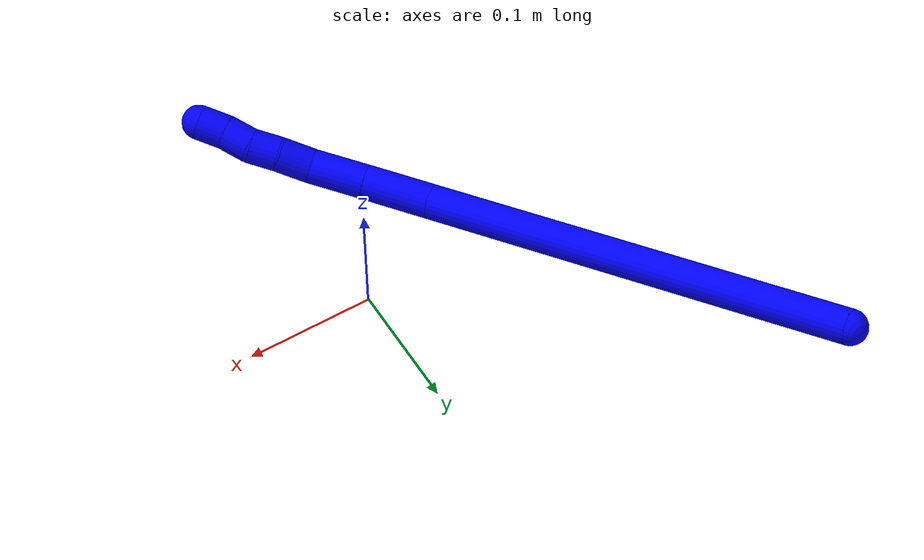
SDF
<sdf version="1.7">
 <world name="default">
  <plugin name="TubeGeneratorPlugin" filename="libtube_generator_plugin.so"/>
  <model name="photoneo_s_sensor">
   <static>1</static>
   <pose>0 0 2 1.57079 1.57079 3.14159</pose>
   <link name="link">
    <inertial><mass>0.1</mass></inertial>
    <sensor name="sensor" type="depth">
     <update_rate>30</update_rate>
     <camera>
      <horizontal_fov>1.22</horizontal_fov>
      <image><width>1920</width><height>1200</height><format>B8G8R8</format></image>
      <clip><near>0.1</near><far>4</far></clip>
      <depth_camera><output>points</output></depth_camera>
     </camera>
     <plugin name="camera_plugin" filename="libgazebo_ros_depth_camera.so">
      <baseline>0.2</baseline>
      <alwaysOn>1</alwaysOn>
      <updateRate>0.0</updateRate>
      <cameraName>camera_ir</cameraName>
      <imageTopicName>/camera/color/image_raw</imageTopicName>
      <cameraInfoTopicName>/camera/color/camera_info</cameraInfoTopicName>
      <depthImageTopicName>/camera/depth/image_raw</depthImageTopicName>
      <depthImageCameraInfoTopicName>/camera/depth/camera_info</depthImageCameraInfoTopicName>
      <pointCloudTopicName>/camera/depth/points</pointCloudTopicName>
      <frameName>fr_optical</frameName>
      <pointCloudCutoff>0.1</pointCloudCutoff>
      <pointCloudCutoffMax>2.0</pointCloudCutoffMax>
      <distortionK1>0</distortionK1>
      <distortionK2>0</distortionK2>
      <distortionK3>0</distortionK3>
      <distortionT1>0</distortionT1>
      <distortionT2>0</distortionT2>
      <CxPrime>0</CxPrime>
      <Cx>0</Cx>
      <Cy>0</Cy>
      <focalLength>0</focalLength>
      <hackBaseline>0</hackBaseline>
     </plugin>
    </sensor>
   </link>
  </model>
  <gravity>0 0 -9.8</gravity>
  <magnetic_field>6e-06 2.3e-05 -4.2e-05</magnetic_field>
  <atmosphere type="adiabatic"/>
  <physics name="default_physics" default="0" type="ode">
   <max_step_size>0.003</max_step_size>
   <real_time_factor>1</real_time_factor>
   <real_time_update_rate>1000</real_time_update_rate>
   <max_contacts>10000</max_contacts>
   <ode>
    <solver>
     <type>quick</type>
     <iters>100</iters>
     <sor>1.3</sor>
     <use_dynamic_moi_rescaling>0</use_dynamic_moi_rescaling>
    </solver>
    <constraints>
     <contact_max_correcting_vel>0</contact_max_correcting_vel>
     <contact_surface_layer>0.001</contact_surface_layer>
     <cfm>0</cfm>
     <erp>0.2</erp>
    </constraints>
   </ode>
  </physics>
  <scene><ambient>0.4 0.4 0.4 1</ambient><background>0.7 0.7 0.7 1</background><shadows>0</shadows></scene>
  <audio><device>default</device></audio>
  <spherical_coordinates>
   <surface_model>EARTH_WGS84</surface_model>
   <latitude_deg>0</latitude_deg>
   <longitude_deg>0</longitude_deg>
   <elevation>0</elevation>
   <heading_deg>0</heading_deg>
  </spherical_coordinates>
  <model name="bin">
   <static>1</static>
   <link name="bottom">
    <collision name="collision-bottom">
     <pose>0 0 -0.01 0 -0 0</pose>
     <geometry><box><size>0.8 0.6 0.02</size></box></geometry>
     <surface>
      <friction><ode><mu>100</mu><mu2>100</mu2></ode></friction>
      <contact><collide_bitmask>65535</collide_bitmask></contact>
     </surface>
    </collision>
   </link>
   <link name="west_wall">
    <collision name="collision-west_wall">
     <pose>-0.41 0 0.1 0 -0 0</pose>
     <geometry><box><size>0.02 0.6 0.2</size></box></geometry>
     <surface>
      <friction><ode><mu>100</mu><mu2>100</mu2></ode></friction>
      <contact><collide_bitmask>65535</collide_bitmask></contact>
     </surface>
    </collision>
   </link>
   <link name="east_wall">
    <collision name="collision-east_wall">
     <pose>0.41 0 0.1 0 -0 0</pose>
     <geometry><box><size>0.02 0.6 0.2</size></box></geometry>
     <surface>
      <friction><ode><mu>100</mu><mu2>100</mu2></ode></friction>
      <contact><collide_bitmask>65535</collide_bitmask></contact>
     </surface>
    </collision>
   </link>
   <link name="south_wall">
    <collision name="collision-south_wall">
     <pose>0 -0.31 0.1 0 -0 0</pose>
     <geometry><box><size>0.8 0.02 0.2</size></box></geometry>
     <surface>
      <friction><ode><mu>100</mu><mu2>100</mu2></ode></friction>
      <contact><collide_bitmask>65535</collide_bitmask></contact>
     </surface>
    </collision>
   </link>
   <link name="north_wall">
    <collision name="collision-north_wall">
     <pose>0 0.31 0.1 0 -0 0</pose>
     <geometry><box><size>0.8 0.02 0.2</size></box></geometry>
     <surface>
      <friction><ode><mu>100</mu><mu2>100</mu2></ode></friction>
      <contact><collide_bitmask>65535</collide_bitmask></contact>
     </surface>
    </collision>
   </link>
  </model>
  <model name="1">
   <static>0</static>
   <link name="1">
    <collision name="collision-cylinder-e_1_1_4">
     <pose>0.047811 -0.045911 -0.147704 2.84023 0.299792 1.56549</pose>
     <geometry><cylinder><radius>0.0125</radius><length>0.323792</length></cylinder></geometry>
     <surface>
      <friction><ode><mu>1.16</mu><mu2>1.16</mu2><slip1>0</slip1><slip2>0</slip2></ode></friction>
      <contact><ode><kp>1e+06</kp><kd>1</kd><max_vel>0</max_vel><min_depth>0.001</min_depth></ode></contact>
     </surface>
    </collision>
    <visual name="visual-cylinder-e_1_1_4">
     <pose>0.047811 -0.045911 -0.147704 2.84023 0.299792 1.56549</pose>
     <geometry><cylinder><radius>0.0125</radius><length>0.323792</length></cylinder></geometry>
     <material><ambient>0 0 1 1</ambient></material>
    </visual>
    <collision name="collision-cylinder-e_2_4_5">
     <pose>0.102949 -0.104695 -0.315409 2.56971 0.298799 0.94637</pose>
     <geometry><cylinder><radius>0.0125</radius><length>0.049776</length></cylinder></geometry>
     <surface>
      <friction><ode><mu>1.16</mu><mu2>1.16</mu2><slip1>0</slip1><slip2>0</slip2></ode></friction>
      <contact><ode><kp>1e+06</kp><kd>1</kd><max_vel>0</max_vel><min_depth>0.001</min_depth></ode></contact>
     </surface>
    </collision>
    <visual name="visual-cylinder-e_2_4_5">
     <pose>0.102949 -0.104695 -0.315409 2.56971 0.298799 0.94637</pose>
     <geometry><cylinder><radius>0.0125</radius><length>0.049776</length></cylinder></geometry>
     <material><ambient>0 0 1 1</ambient></material>
    </visual>
    <collision name="collision-cylinder-e_3_5_6">
     <pose>0.116395 -0.128923 -0.351371 2.52326 0.302841 0.891329</pose>
     <geometry><cylinder><radius>0.0125</radius><length>0.041043</length></cylinder></geometry>
     <surface>
      <friction><ode><mu>1.16</mu><mu2>1.16</mu2><slip1>0</slip1><slip2>0</slip2></ode></friction>
      <contact><ode><kp>1e+06</kp><kd>1</kd><max_vel>0</max_vel><min_depth>0.001</min_depth></ode></contact>
     </surface>
    </collision>
    <visual name="visual-cylinder-e_3_5_6">
     <pose>0.116395 -0.128923 -0.351371 2.52326 0.302841 0.891329</pose>
     <geometry><cylinder><radius>0.0125</radius><length>0.041043</length></cylinder></geometry>
     <material><ambient>0 0 1 1</ambient></material>
    </visual>
    <collision name="collision-cylinder-e_4_6_7">
     <pose>0.125165 -0.149853 -0.374858 2.23691 0.214228 0.435524</pose>
     <geometry><cylinder><radius>0.0125</radius><length>0.024929</length></cylinder></geometry>
     <surface>
      <friction><ode><mu>1.16</mu><mu2>1.16</mu2><slip1>0</slip1><slip2>0</slip2></ode></friction>
      <contact><ode><kp>1e+06</kp><kd>1</kd><max_vel>0</max_vel><min_depth>0.001</min_depth></ode></contact>
     </surface>
    </collision>
    <visual name="visual-cylinder-e_4_6_7">
     <pose>0.125165 -0.149853 -0.374858 2.23691 0.214228 0.435524</pose>
     <geometry><cylinder><radius>0.0125</radius><length>0.024929</length></cylinder></geometry>
     <material><ambient>0 0 1 1</ambient></material>
    </visual>
    <collision name="collision-cylinder-e_5_7_8">
     <pose>0.130674 -0.166332 -0.389236 2.35253 0.285867 0.665585</pose>
     <geometry><cylinder><radius>0.0125</radius><length>0.020276</length></cylinder></geometry>
     <surface>
      <friction><ode><mu>1.16</mu><mu2>1.16</mu2><slip1>0</slip1><slip2>0</slip2></ode></friction>
      <contact><ode><kp>1e+06</kp><kd>1</kd><max_vel>0</max_vel><min_depth>0.001</min_depth></ode></contact>
     </surface>
    </collision>
    <visual name="visual-cylinder-e_5_7_8">
     <pose>0.130674 -0.166332 -0.389236 2.35253 0.285867 0.665585</pose>
     <geometry><cylinder><radius>0.0125</radius><length>0.020276</length></cylinder></geometry>
     <material><ambient>0 0 1 1</ambient></material>
    </visual>
    <collision name="collision-cylinder-e_6_8_9">
     <pose>0.134435 -0.179271 -0.404068 2.49392 0.089887 0.266394</pose>
     <geometry><cylinder><radius>0.0125</radius><length>0.020093</length></cylinder></geometry>
     <surface>
      <friction><ode><mu>1.16</mu><mu2>1.16</mu2><slip1>0</slip1><slip2>0</slip2></ode></friction>
      <contact><ode><kp>1e+06</kp><kd>1</kd><max_vel>0</max_vel><min_depth>0.001</min_depth></ode></contact>
     </surface>
    </collision>
    <visual name="visual-cylinder-e_6_8_9">
     <pose>0.134435 -0.179271 -0.404068 2.49392 0.089887 0.266394</pose>
     <geometry><cylinder><radius>0.0125</radius><length>0.020093</length></cylinder></geometry>
     <material><ambient>0 0 1 1</ambient></material>
    </visual>
    <collision name="collision-cylinder-e_7_9_2">
     <pose>0.137528 -0.19192 -0.419286 2.4014 0.219929 0.554504</pose>
     <geometry><cylinder><radius>0.0125</radius><length>0.020092</length></cylinder></geometry>
     <surface>
      <friction><ode><mu>1.16</mu><mu2>1.16</mu2><slip1>0</slip1><slip2>0</slip2></ode></friction>
      <contact><ode><kp>1e+06</kp><kd>1</kd><max_vel>0</max_vel><min_depth>0.001</min_depth></ode></contact>
     </surface>
    </collision>
    <visual name="visual-cylinder-e_7_9_2">
     <pose>0.137528 -0.19192 -0.419286 2.4014 0.219929 0.554504</pose>
     <geometry><cylinder><radius>0.0125</radius><length>0.020092</length></cylinder></geometry>
     <material><ambient>0 0 1 1</ambient></material>
    </visual>
    <collision name="collision-sphere-2">
     <pose>0.13972 -0.198532 -0.426525 0 -0 0</pose>
     <geometry><sphere><radius>0.0125</radius></sphere></geometry>
     <surface>
      <friction><ode><mu>1.16</mu><mu2>1.16</mu2><slip1>0</slip1><slip2>0</slip2></ode></friction>
      <contact><ode><kp>1e+06</kp><kd>1</kd><max_vel>0</max_vel><min_depth>0.001</min_depth></ode></contact>
     </surface>
    </collision>
    <visual name="visual-sphere-2">
     <pose>0.13972 -0.198532 -0.426525 0 -0 0</pose>
     <geometry><sphere><radius>0.0125</radius></sphere></geometry>
     <material><ambient>0 0 1 1</ambient></material>
    </visual>
    <collision name="collision-sphere-9">
     <pose>0.135337 -0.185308 -0.412048 0 -0 0</pose>
     <geometry><sphere><radius>0.0125</radius></sphere></geometry>
     <surface>
      <friction><ode><mu>1.16</mu><mu2>1.16</mu2><slip1>0</slip1><slip2>0</slip2></ode></friction>
      <contact><ode><kp>1e+06</kp><kd>1</kd><max_vel>0</max_vel><min_depth>0.001</min_depth></ode></contact>
     </surface>
    </collision>
    <visual name="visual-sphere-9">
     <pose>0.135337 -0.185308 -0.412048 0 -0 0</pose>
     <geometry><sphere><radius>0.0125</radius></sphere></geometry>
     <material><ambient>0 0 1 1</ambient></material>
    </visual>
    <collision name="collision-sphere-4">
     <pose>0.095623 -0.091822 -0.295409 0 -0 0</pose>
     <geometry><sphere><radius>0.0125</radius></sphere></geometry>
     <surface>
      <friction><ode><mu>1.16</mu><mu2>1.16</mu2><slip1>0</slip1><slip2>0</slip2></ode></friction>
      <contact><ode><kp>1e+06</kp><kd>1</kd><max_vel>0</max_vel><min_depth>0.001</min_depth></ode></contact>
     </surface>
    </collision>
    <visual name="visual-sphere-4">
     <pose>0.095623 -0.091822 -0.295409 0 -0 0</pose>
     <geometry><sphere><radius>0.0125</radius></sphere></geometry>
     <material><ambient>0 0 1 1</ambient></material>
    </visual>
    <collision name="collision-sphere-1">
     <geometry><sphere><radius>0.0125</radius></sphere></geometry>
     <surface>
      <friction><ode><mu>1.16</mu><mu2>1.16</mu2><slip1>0</slip1><slip2>0</slip2></ode></friction>
      <contact><ode><kp>1e+06</kp><kd>1</kd><max_vel>0</max_vel><min_depth>0.001</min_depth></ode></contact>
     </surface>
    </collision>
    <visual name="visual-sphere-1">
     <geometry><sphere><radius>0.0125</radius></sphere></geometry>
     <material><ambient>0 0 1 1</ambient></material>
    </visual>
    <collision name="collision-sphere-8">
     <pose>0.133533 -0.173235 -0.396089 0 -0 0</pose>
     <geometry><sphere><radius>0.0125</radius></sphere></geometry>
     <surface>
      <friction><ode><mu>1.16</mu><mu2>1.16</mu2><slip1>0</slip1><slip2>0</slip2></ode></friction>
      <contact><ode><kp>1e+06</kp><kd>1</kd><max_vel>0</max_vel><min_depth>0.001</min_depth></ode></contact>
     </surface>
    </collision>
    <visual name="visual-sphere-8">
     <pose>0.133533 -0.173235 -0.396089 0 -0 0</pose>
     <geometry><sphere><radius>0.0125</radius></sphere></geometry>
     <material><ambient>0 0 1 1</ambient></material>
    </visual>
    <collision name="collision-sphere-5">
     <pose>0.110275 -0.117568 -0.33541 0 -0 0</pose>
     <geometry><sphere><radius>0.0125</radius></sphere></geometry>
     <surface>
      <friction><ode><mu>1.16</mu><mu2>1.16</mu2><slip1>0</slip1><slip2>0</slip2></ode></friction>
      <contact><ode><kp>1e+06</kp><kd>1</kd><max_vel>0</max_vel><min_depth>0.001</min_depth></ode></contact>
     </surface>
    </collision>
    <visual name="visual-sphere-5">
     <pose>0.110275 -0.117568 -0.33541 0 -0 0</pose>
     <geometry><sphere><radius>0.0125</radius></sphere></geometry>
     <material><ambient>0 0 1 1</ambient></material>
    </visual>
    <collision name="collision-sphere-6">
     <pose>0.122516 -0.140277 -0.367331 0 -0 0</pose>
     <geometry><sphere><radius>0.0125</radius></sphere></geometry>
     <surface>
      <friction><ode><mu>1.16</mu><mu2>1.16</mu2><slip1>0</slip1><slip2>0</slip2></ode></friction>
      <contact><ode><kp>1e+06</kp><kd>1</kd><max_vel>0</max_vel><min_depth>0.001</min_depth></ode></contact>
     </surface>
    </collision>
    <visual name="visual-sphere-6">
     <pose>0.122516 -0.140277 -0.367331 0 -0 0</pose>
     <geometry><sphere><radius>0.0125</radius></sphere></geometry>
     <material><ambient>0 0 1 1</ambient></material>
    </visual>
    <collision name="collision-sphere-7">
     <pose>0.127815 -0.159429 -0.382384 0 -0 0</pose>
     <geometry><sphere><radius>0.0125</radius></sphere></geometry>
     <surface>
      <friction><ode><mu>1.16</mu><mu2>1.16</mu2><slip1>0</slip1><slip2>0</slip2></ode></friction>
      <contact><ode><kp>1e+06</kp><kd>1</kd><max_vel>0</max_vel><min_depth>0.001</min_depth></ode></contact>
     </surface>
    </collision>
    <visual name="visual-sphere-7">
     <pose>0.127815 -0.159429 -0.382384 0 -0 0</pose>
     <geometry><sphere><radius>0.0125</radius></sphere></geometry>
     <material><ambient>0 0 1 1</ambient></material>
    </visual>
    <inertial>
     <pose>0.073233 -0.079869 -0.223453 0 -0 0</pose>
     <mass>0.5</mass>
     <inertia>
      <ixx>0.002775</ixx>
      <ixy>0</ixy>
      <ixz>0</ixz>
      <iyy>0.002941</iyy>
      <iyz>0</iyz>
      <izz>-5.9e-05</izz>
     </inertia>
    </inertial>
   </link>
   <pose>-0.187362 0.32821 0.217789 -1.25567 0.61736 0.288131</pose>
  </model>
 </world>
</sdf>
